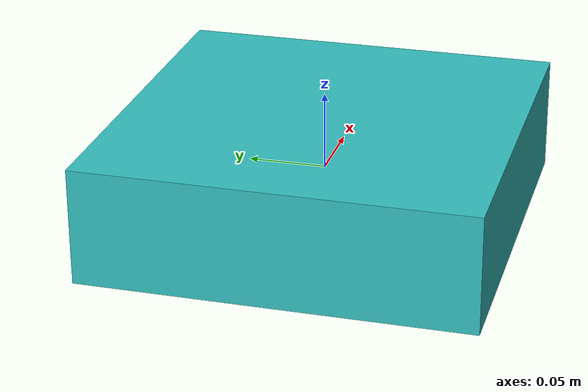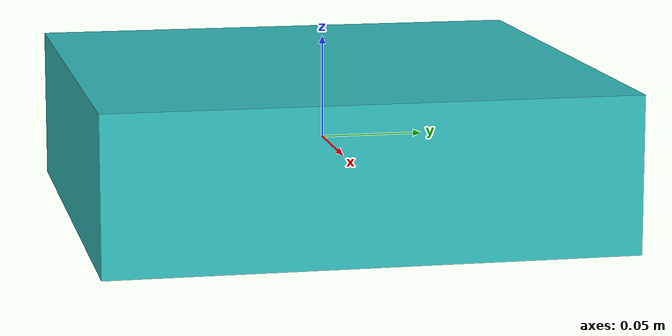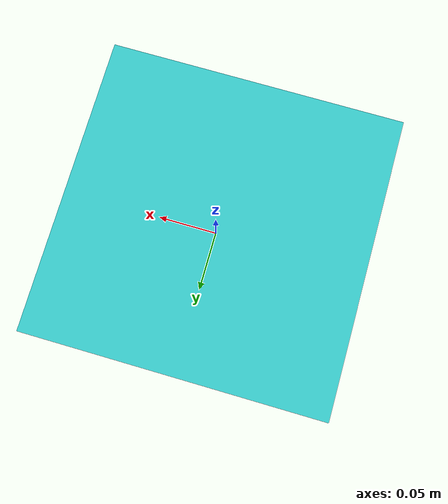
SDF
<?xml version='1.0'?>
<sdf version='1.6'>
<model name='turquoise_box_2'>
      <static>true</static>
      <pose frame=''>0 0 0 0 -0 0</pose>
      <link name='link'>
        <inertial>
          <mass>1</mass>
          <inertia>
            <ixx>0.166667</ixx>
            <ixy>0</ixy>
            <ixz>0</ixz>
            <iyy>0.166667</iyy>
            <iyz>0</iyz>
            <izz>0.166667</izz>
          </inertia>
        </inertial>
        <collision name='collision'>
          <geometry>
            <box>
              <size>0.25 0.25 0.075</size>
            </box>
          </geometry>
          <max_contacts>10</max_contacts>
          <surface>
            <contact>
              <ode/>
            </contact>
            <bounce/>
            <friction>
              <torsional>
                <ode/>
              </torsional>
              <ode/>
            </friction>
          </surface>
        </collision>
        <visual name='visual'>
          <geometry>
            <box>
              <size>0.25 0.25 0.075</size>
            </box>
          </geometry>
          <material>
            <script>
              <uri>file://media/materials/scripts/gazebo.material</uri>
              <name>Gazebo/Turquoise</name>
            </script>
          </material>
        </visual>
        <self_collide>0</self_collide>
        <kinematic>0</kinematic>
      </link>
    </model>
</sdf>
